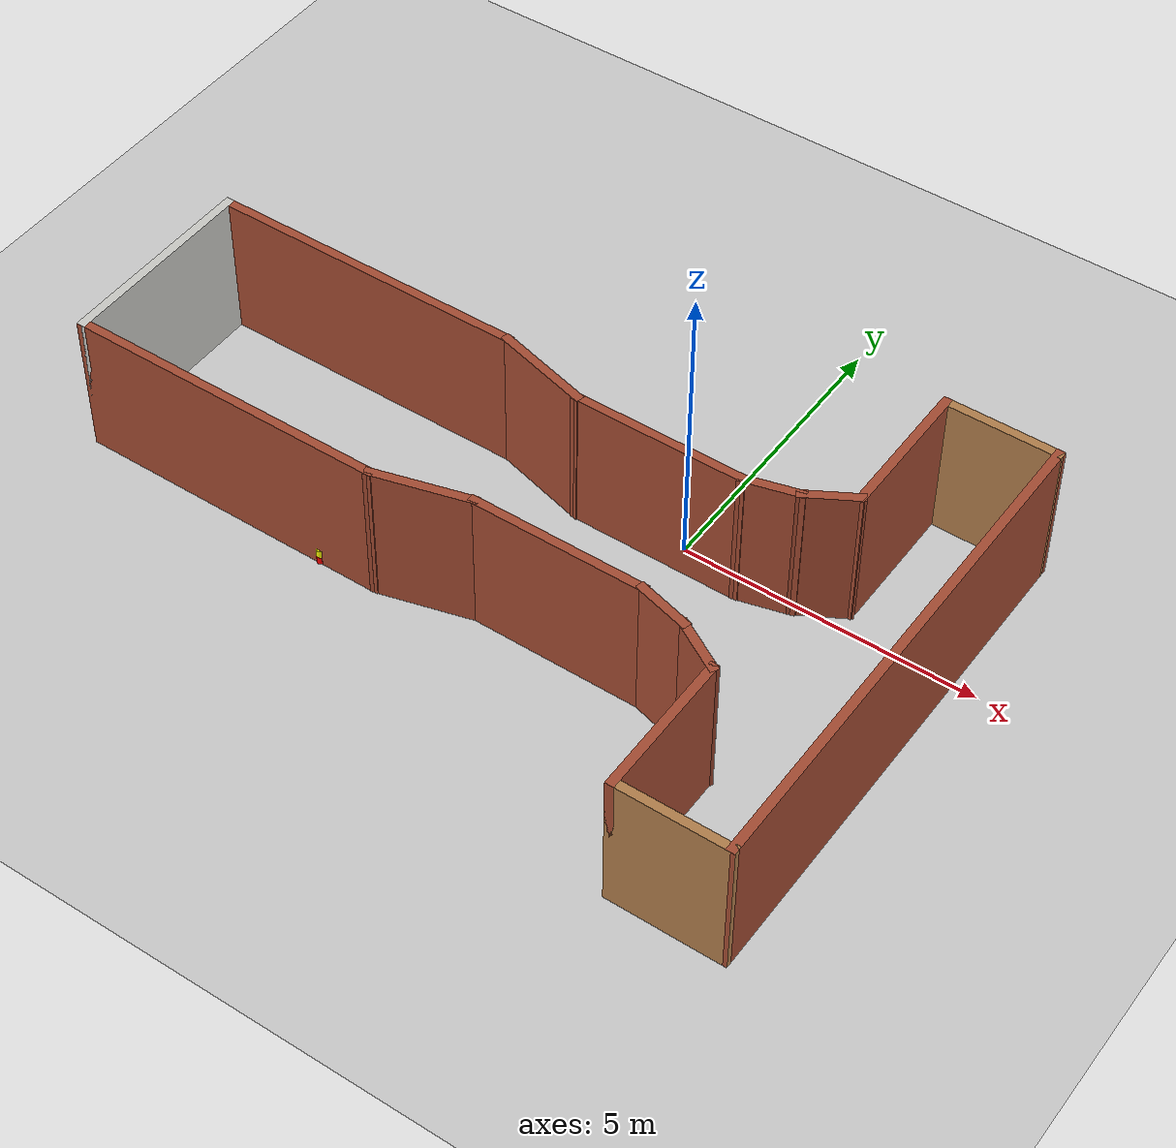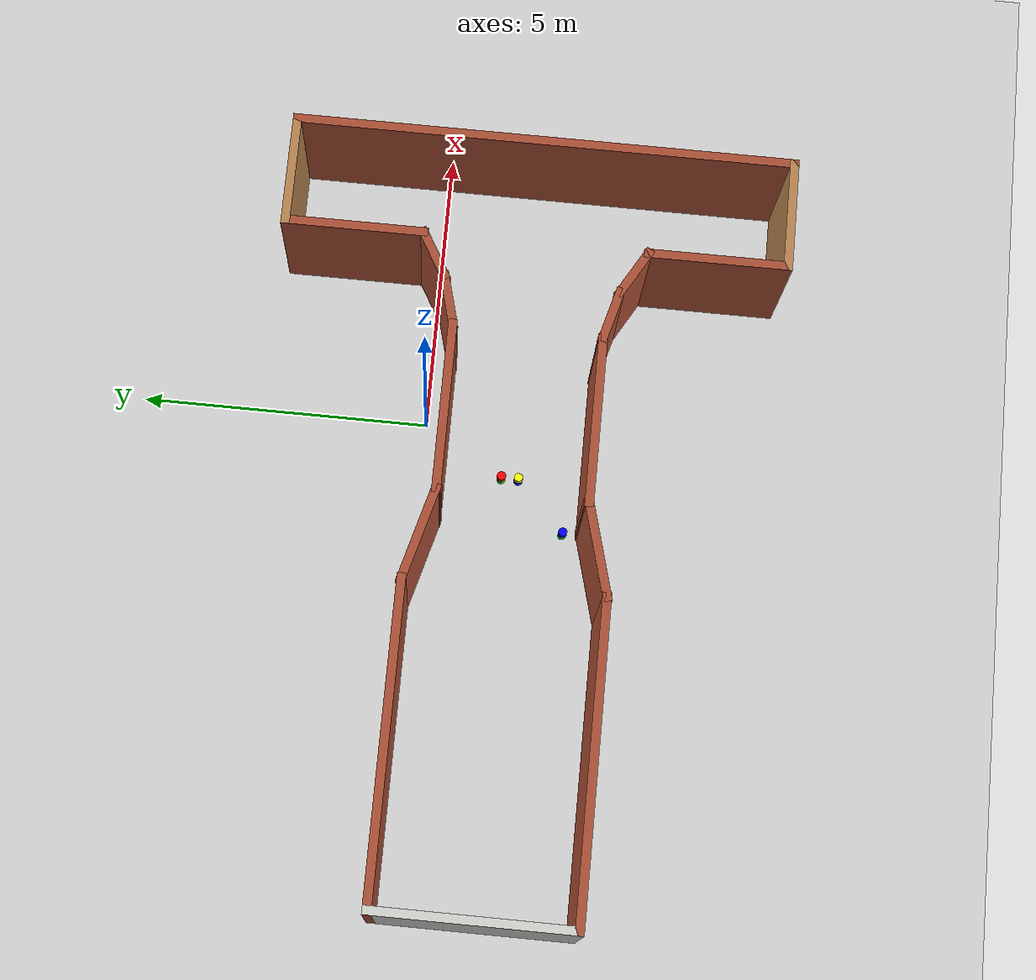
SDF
<sdf version="1.4">
  <world name="default">

    <scene>
      <ambient>0.4 0.4 0.4 1</ambient>
      <background>0.7 0.7 0.7 1</background>
      <shadows>true</shadows>
    </scene>

    <!-- A global light source -->
    <include>
      <uri>model://sun</uri>
    </include>

    <!-- A ground plane -->
    <include>
      <uri>model://ground_plane</uri>
    </include>

    <!-- My Maze -->
    <include>
      <uri>model://maze_3</uri>
	    <pose>-2.05 -1.60 0 0 0 0</pose>
    </include>

    <!-- My Beacons -->
    <include>
      <uri>model://beacon_GB</uri>
	    <pose>-1.75 -2.55 0 0 0 0</pose>
    </include>
    <include>
      <uri>model://beacon_GR</uri>
	    <pose>-0.85 -1.4 0 0 0 0</pose>
    </include>
    <include>
      <uri>model://beacon_BY</uri>
	    <pose>-0.85 -1.7 0 0 0 0</pose>
    </include>
    <include>
      <uri>model://beacon_RY</uri>
	    <pose>-4.3 -3.3 0 0 0 0</pose>
    </include>

    <physics type="ode">
      <real_time_update_rate>1000.0</real_time_update_rate>
      <max_step_size>0.001</max_step_size>
      <real_time_factor>1</real_time_factor>
      <ode>
        <solver>
          <type>quick</type>
          <iters>150</iters>
          <precon_iters>0</precon_iters>
          <sor>1.400000</sor>
          <use_dynamic_moi_rescaling>1</use_dynamic_moi_rescaling>
        </solver>
        <constraints>
          <cfm>0.00001</cfm>
          <erp>0.2</erp>
          <contact_max_correcting_vel>2000.000000</contact_max_correcting_vel>
          <contact_surface_layer>0.01000</contact_surface_layer>
        </constraints>
      </ode>
    </physics>
  </world>

</sdf>

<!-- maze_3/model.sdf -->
<sdf version='1.5'>
  <model name='maze_3'>
    <pose frame=''>3.84212 -3.565 0 0 -0 0</pose>
    <link name='Wall_0'>
      <collision name='Wall_0_Collision'>
        <geometry>
          <box>
            <size>3.5 0.15 2.5</size>
          </box>
        </geometry>
        <pose frame=''>0 0 1.25 0 -0 0</pose>
      </collision>
      <visual name='Wall_0_Visual'>
        <pose frame=''>0 0 1.25 0 -0 0</pose>
        <geometry>
          <box>
            <size>3.5 0.15 2.5</size>
          </box>
        </geometry>
        <material>
          <script>
            <uri>file://media/materials/scripts/gazebo.material</uri>
            <name>Gazebo/CeilingTiled</name>
          </script>
          <ambient>1 1 1 1</ambient>
        </material>
      </visual>
      <pose frame=''>-6.58212 0 0 0 0 -1.5708</pose>
    </link>
    <link name='Wall_1'>
      <collision name='Wall_1_Collision'>
        <geometry>
          <box>
            <size>5.5 0.15 2.5</size>
          </box>
        </geometry>
        <pose frame=''>0 0 1.25 0 -0 0</pose>
      </collision>
      <visual name='Wall_1_Visual'>
        <pose frame=''>0 0 1.25 0 -0 0</pose>
        <geometry>
          <box>
            <size>5.5 0.15 2.5</size>
          </box>
        </geometry>
        <material>
          <script>
            <uri>file://media/materials/scripts/gazebo.material</uri>
            <name>Gazebo/Bricks</name>
          </script>
          <ambient>1 1 1 1</ambient>
        </material>
      </visual>
      <pose frame=''>-3.90712 -1.675 0 0 -0 0</pose>
    </link>
    <link name='Wall_11'>
      <collision name='Wall_11_Collision'>
        <geometry>
          <box>
            <size>1 0.15 2.5</size>
          </box>
        </geometry>
        <pose frame=''>0 0 1.25 0 -0 0</pose>
      </collision>
      <visual name='Wall_11_Visual'>
        <pose frame=''>0 0 1.25 0 -0 0</pose>
        <geometry>
          <box>
            <size>1 0.15 2.5</size>
          </box>
        </geometry>
        <material>
          <script>
            <uri>file://media/materials/scripts/gazebo.material</uri>
            <name>Gazebo/Bricks</name>
          </script>
          <ambient>1 1 1 1</ambient>
        </material>
      </visual>
      <pose frame=''>3.57388 -1.37089 0 0 0 -0.261799</pose>
    </link>
    <link name='Wall_12'>
      <collision name='Wall_12_Collision'>
        <geometry>
          <box>
            <size>1 0.15 2.5</size>
          </box>
        </geometry>
        <pose frame=''>0 0 1.25 0 -0 0</pose>
      </collision>
      <visual name='Wall_12_Visual'>
        <pose frame=''>0 0 1.25 0 -0 0</pose>
        <geometry>
          <box>
            <size>1 0.15 2.5</size>
          </box>
        </geometry>
        <material>
          <script>
            <uri>file://media/materials/scripts/gazebo.material</uri>
            <name>Gazebo/Bricks</name>
          </script>
          <ambient>1 1 1 1</ambient>
        </material>
      </visual>
      <pose frame=''>4.35246 -1.69339 0 0 0 -0.523599</pose>
    </link>
    <link name='Wall_13'>
      <collision name='Wall_13_Collision'>
        <geometry>
          <box>
            <size>2.5 0.15 2.5</size>
          </box>
        </geometry>
        <pose frame=''>0 0 1.25 0 -0 0</pose>
      </collision>
      <visual name='Wall_13_Visual'>
        <pose frame=''>0 0 1.25 0 -0 0</pose>
        <geometry>
          <box>
            <size>2.5 0.15 2.5</size>
          </box>
        </geometry>
        <material>
          <script>
            <uri>file://media/materials/scripts/gazebo.material</uri>
            <name>Gazebo/Bricks</name>
          </script>
          <ambient>1 1 1 1</ambient>
        </material>
      </visual>
      <pose frame=''>4.72052 -3.08089 0 0 0 -1.5708</pose>
    </link>
    <link name='Wall_14'>
      <collision name='Wall_14_Collision'>
        <geometry>
          <box>
            <size>2 0.15 2.5</size>
          </box>
        </geometry>
        <pose frame=''>0 0 1.25 0 -0 0</pose>
      </collision>
      <visual name='Wall_14_Visual'>
        <pose frame=''>0 0 1.25 0 -0 0</pose>
        <geometry>
          <box>
            <size>2 0.15 2.5</size>
          </box>
        </geometry>
        <material>
          <script>
            <uri>file://media/materials/scripts/gazebo.material</uri>
            <name>Gazebo/Wood</name>
          </script>
          <ambient>1 1 1 1</ambient>
        </material>
      </visual>
      <pose frame=''>5.64552 -4.25589 0 0 -0 0</pose>
    </link>
    <link name='Wall_17'>
      <collision name='Wall_17_Collision'>
        <geometry>
          <box>
            <size>1.02224 0.15 2.5</size>
          </box>
        </geometry>
        <pose frame=''>0 0 1.25 0 -0 0</pose>
      </collision>
      <visual name='Wall_17_Visual'>
        <pose frame=''>0 0 1.25 0 -0 0</pose>
        <geometry>
          <box>
            <size>1.02224 0.15 2.5</size>
          </box>
        </geometry>
        <material>
          <script>
            <uri>file://media/materials/scripts/gazebo.material</uri>
            <name>Gazebo/Bricks</name>
          </script>
          <ambient>1 1 1 1</ambient>
        </material>
      </visual>
      <pose frame=''>3.58538 1.37089 0 0 -0 0.254975</pose>
    </link>
    <link name='Wall_18'>
      <collision name='Wall_18_Collision'>
        <geometry>
          <box>
            <size>1 0.15 2.5</size>
          </box>
        </geometry>
        <pose frame=''>0 0 1.25 0 -0 0</pose>
      </collision>
      <visual name='Wall_18_Visual'>
        <pose frame=''>0 0 1.25 0 -0 0</pose>
        <geometry>
          <box>
            <size>1 0.15 2.5</size>
          </box>
        </geometry>
        <material>
          <script>
            <uri>file://media/materials/scripts/gazebo.material</uri>
            <name>Gazebo/Bricks</name>
          </script>
          <ambient>1 1 1 1</ambient>
        </material>
      </visual>
      <pose frame=''>4.36396 1.69339 0 0 -0 0.523599</pose>
    </link>
    <link name='Wall_19'>
      <collision name='Wall_19_Collision'>
        <geometry>
          <box>
            <size>2.5 0.15 2.5</size>
          </box>
        </geometry>
        <pose frame=''>0 0 1.25 0 -0 0</pose>
      </collision>
      <visual name='Wall_19_Visual'>
        <pose frame=''>0 0 1.25 0 -0 0</pose>
        <geometry>
          <box>
            <size>2.5 0.15 2.5</size>
          </box>
        </geometry>
        <material>
          <script>
            <uri>file://media/materials/scripts/gazebo.material</uri>
            <name>Gazebo/Bricks</name>
          </script>
          <ambient>1 1 1 1</ambient>
        </material>
      </visual>
      <pose frame=''>4.73202 3.08089 0 0 -0 1.5708</pose>
    </link>
    <link name='Wall_2'>
      <collision name='Wall_2_Collision'>
        <geometry>
          <box>
            <size>1.75 0.15 2.5</size>
          </box>
        </geometry>
        <pose frame=''>0 0 1.25 0 -0 0</pose>
      </collision>
      <visual name='Wall_2_Visual'>
        <pose frame=''>0 0 1.25 0 -0 0</pose>
        <geometry>
          <box>
            <size>1.75 0.15 2.5</size>
          </box>
        </geometry>
        <material>
          <script>
            <uri>file://media/materials/scripts/gazebo.material</uri>
            <name>Gazebo/Bricks</name>
          </script>
          <ambient>1 1 1 1</ambient>
        </material>
      </visual>
      <pose frame=''>-0.45938 -1.46795 0 0 -0 0.261799</pose>
    </link>
    <link name='Wall_20'>
      <collision name='Wall_20_Collision'>
        <geometry>
          <box>
            <size>2 0.15 2.5</size>
          </box>
        </geometry>
        <pose frame=''>0 0 1.25 0 -0 0</pose>
      </collision>
      <visual name='Wall_20_Visual'>
        <pose frame=''>0 0 1.25 0 -0 0</pose>
        <geometry>
          <box>
            <size>2 0.15 2.5</size>
          </box>
        </geometry>
        <material>
          <script>
            <uri>file://media/materials/scripts/gazebo.material</uri>
            <name>Gazebo/Wood</name>
          </script>
          <ambient>1 1 1 1</ambient>
        </material>
      </visual>
      <pose frame=''>5.65702 4.25589 0 0 -0 0</pose>
    </link>
    <link name='Wall_29'>
      <collision name='Wall_29_Collision'>
        <geometry>
          <box>
            <size>8.66178 0.15 2.5</size>
          </box>
        </geometry>
        <pose frame=''>0 0 1.25 0 -0 0</pose>
      </collision>
      <visual name='Wall_29_Visual'>
        <pose frame=''>0 0 1.25 0 -0 0</pose>
        <geometry>
          <box>
            <size>8.66178 0.15 2.5</size>
          </box>
        </geometry>
        <material>
          <script>
            <uri>file://media/materials/scripts/gazebo.material</uri>
            <name>Gazebo/Bricks</name>
          </script>
          <ambient>1 1 1 1</ambient>
        </material>
      </visual>
      <pose frame=''>6.57627 0 0 0 -0 1.56944</pose>
    </link>
    <link name='Wall_4'>
      <collision name='Wall_4_Collision'>
        <geometry>
          <box>
            <size>5.5 0.15 2.5</size>
          </box>
        </geometry>
        <pose frame=''>0 0 1.25 0 -0 0</pose>
      </collision>
      <visual name='Wall_4_Visual'>
        <pose frame=''>0 0 1.25 0 -0 0</pose>
        <geometry>
          <box>
            <size>5.5 0.15 2.5</size>
          </box>
        </geometry>
        <material>
          <script>
            <uri>file://media/materials/scripts/gazebo.material</uri>
            <name>Gazebo/Bricks</name>
          </script>
          <ambient>1 1 1 1</ambient>
        </material>
      </visual>
      <pose frame=''>-3.90712 1.675 0 0 -0 0</pose>
    </link>
    <link name='Wall_5'>
      <collision name='Wall_5_Collision'>
        <geometry>
          <box>
            <size>1.75 0.15 2.5</size>
          </box>
        </geometry>
        <pose frame=''>0 0 1.25 0 -0 0</pose>
      </collision>
      <visual name='Wall_5_Visual'>
        <pose frame=''>0 0 1.25 0 -0 0</pose>
        <geometry>
          <box>
            <size>1.75 0.15 2.5</size>
          </box>
        </geometry>
        <material>
          <script>
            <uri>file://media/materials/scripts/gazebo.material</uri>
            <name>Gazebo/Bricks</name>
          </script>
          <ambient>1 1 1 1</ambient>
        </material>
      </visual>
      <pose frame=''>-0.45938 1.46795 0 0 0 -0.261799</pose>
    </link>
    <link name='Wall_6'>
      <collision name='Wall_6_Collision'>
        <geometry>
          <box>
            <size>3 0.15 2.5</size>
          </box>
        </geometry>
        <pose frame=''>0 0 1.25 0 -0 0</pose>
      </collision>
      <visual name='Wall_6_Visual'>
        <pose frame=''>0 0 1.25 0 -0 0</pose>
        <geometry>
          <box>
            <size>3 0.15 2.5</size>
          </box>
        </geometry>
        <material>
          <script>
            <uri>file://media/materials/scripts/gazebo.material</uri>
            <name>Gazebo/Bricks</name>
          </script>
          <ambient>1 1 1 1</ambient>
        </material>
      </visual>
      <pose frame=''>1.73836 1.26089 0 0 -0 0</pose>
    </link>
    <link name='Wall_8'>
      <collision name='Wall_8_Collision'>
        <geometry>
          <box>
            <size>3 0.15 2.5</size>
          </box>
        </geometry>
        <pose frame=''>0 0 1.25 0 -0 0</pose>
      </collision>
      <visual name='Wall_8_Visual'>
        <pose frame=''>0 0 1.25 0 -0 0</pose>
        <geometry>
          <box>
            <size>3 0.15 2.5</size>
          </box>
        </geometry>
        <material>
          <script>
            <uri>file://media/materials/scripts/gazebo.material</uri>
            <name>Gazebo/Bricks</name>
          </script>
          <ambient>1 1 1 1</ambient>
        </material>
      </visual>
      <pose frame=''>1.73836 -1.26089 0 0 -0 0</pose>
    </link>
    <static>1</static>
  </model>
</sdf>

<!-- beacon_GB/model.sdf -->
<sdf version='1.4'>
  <model name="beacon_GB">
	<static>true</static>
          <link name='chassis_lower'>
            <pose>0 0 0.07 0 0 0</pose>

            <collision name='collision'>
              <geometry>
                <cylinder>
                  <radius>.075</radius>
		  <length>.140</length>
                </cylinder>
              </geometry>
            </collision>

            <visual name='visual'>
              <geometry>
                <cylinder>
                  <radius>.075</radius>
		  <length>.140</length>
                </cylinder>
              </geometry>
        	<material>
          	  <ambient>0 1 0 1</ambient>
          	  <diffuse>0 1 0 1</diffuse>
          	  <specular>0.1 0.1 0.1 1</specular>
         	  <emissive>0 0 0 0</emissive>
        	</material>
            </visual>
          </link>

          <link name='chassis_upper'>
            <pose>0 0 0.21 0 0 0</pose>

            <collision name='collision'>
              <geometry>
                <cylinder>
                  <radius>.075</radius>
		  <length>.140</length>
                </cylinder>
              </geometry>
            </collision>

            <visual name='visual'>
              <geometry>
                <cylinder>
                  <radius>.075</radius>
		  <length>.140</length>
                </cylinder>
              </geometry>
        	<material>
          	  <ambient>0 0 1 1</ambient>
          	  <diffuse>0 0 1 1</diffuse>
          	  <specular>0.1 0.1 0.1 1</specular>
         	  <emissive>0 0 0 0</emissive>
        	</material>
            </visual>
          </link>

  </model>
</sdf>

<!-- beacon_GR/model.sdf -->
<sdf version='1.4'>
  <model name="beacon_GR">
	<static>true</static>
          <link name='chassis_lower'>
            <pose>0 0 0.07 0 0 0</pose>

            <collision name='collision'>
              <geometry>
                <cylinder>
                  <radius>.075</radius>
		  <length>.140</length>
                </cylinder>
              </geometry>
            </collision>

            <visual name='visual'>
              <geometry>
                <cylinder>
                  <radius>.075</radius>
		  <length>.140</length>
                </cylinder>
              </geometry>
        	<material>
          	  <ambient>0 1 0 1</ambient>
          	  <diffuse>0 1 0 1</diffuse>
          	  <specular>0.1 0.1 0.1 1</specular>
         	  <emissive>0 0 0 0</emissive>
        	</material>
            </visual>
          </link>

          <link name='chassis_upper'>
            <pose>0 0 0.21 0 0 0</pose>

            <collision name='collision'>
              <geometry>
                <cylinder>
                  <radius>.075</radius>
		  <length>.140</length>
                </cylinder>
              </geometry>
            </collision>

            <visual name='visual'>
              <geometry>
                <cylinder>
                  <radius>.075</radius>
		  <length>.140</length>
                </cylinder>
              </geometry>
        	<material>
          	  <ambient>1 0 0 1</ambient>
          	  <diffuse>1 0 0 1</diffuse>
          	  <specular>0.1 0.1 0.1 1</specular>
         	  <emissive>0 0 0 0</emissive>
        	</material>
            </visual>
          </link>

  </model>
</sdf>

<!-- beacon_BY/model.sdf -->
<sdf version='1.4'>
  <model name="beacon_BY">
	<static>true</static>
          <link name='chassis_lower'>
            <pose>0 0 0.07 0 0 0</pose>

            <collision name='collision'>
              <geometry>
                <cylinder>
                  <radius>.075</radius>
		  <length>.140</length>
                </cylinder>
              </geometry>
            </collision>

            <visual name='visual'>
              <geometry>
                <cylinder>
                  <radius>.075</radius>
		  <length>.140</length>
                </cylinder>
              </geometry>
        	<material>
          	  <ambient>0 0 1 1</ambient>
          	  <diffuse>0 0 1 1</diffuse>
          	  <specular>0.1 0.1 0.1 1</specular>
         	  <emissive>0 0 0 0</emissive>
        	</material>
            </visual>
          </link>

          <link name='chassis_upper'>
            <pose>0 0 0.21 0 0 0</pose>

            <collision name='collision'>
              <geometry>
                <cylinder>
                  <radius>.075</radius>
		  <length>.140</length>
                </cylinder>
              </geometry>
            </collision>

            <visual name='visual'>
              <geometry>
                <cylinder>
                  <radius>.075</radius>
		  <length>.140</length>
                </cylinder>
              </geometry>
        	<material>
          	  <ambient>1 1 0 1</ambient>
          	  <diffuse>1 1 0 1</diffuse>
          	  <specular>0.1 0.1 0.1 1</specular>
         	  <emissive>0 0 0 0</emissive>
        	</material>
            </visual>
          </link>

  </model>
</sdf>

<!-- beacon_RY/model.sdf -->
<sdf version='1.4'>
  <model name="beacon_RY">
	<static>true</static>
          <link name='chassis_lower'>
            <pose>0 0 0.07 0 0 0</pose>

            <collision name='collision'>
              <geometry>
                <cylinder>
                  <radius>.075</radius>
		  <length>.140</length>
                </cylinder>
              </geometry>
            </collision>

            <visual name='visual'>
              <geometry>
                <cylinder>
                  <radius>.075</radius>
		  <length>.140</length>
                </cylinder>
              </geometry>
        	<material>
          	  <ambient>1 0 0 1</ambient>
          	  <diffuse>1 0 0 1</diffuse>
          	  <specular>0.1 0.1 0.1 1</specular>
         	  <emissive>0 0 0 0</emissive>
        	</material>
            </visual>
          </link>

          <link name='chassis_upper'>
            <pose>0 0 0.21 0 0 0</pose>

            <collision name='collision'>
              <geometry>
                <cylinder>
                  <radius>.075</radius>
		  <length>.140</length>
                </cylinder>
              </geometry>
            </collision>

            <visual name='visual'>
              <geometry>
                <cylinder>
                  <radius>.075</radius>
		  <length>.140</length>
                </cylinder>
              </geometry>
        	<material>
          	  <ambient>1 1 0 1</ambient>
          	  <diffuse>1 1 0 1</diffuse>
          	  <specular>0.1 0.1 0.1 1</specular>
         	  <emissive>0 0 0 0</emissive>
        	</material>
            </visual>
          </link>

  </model>
</sdf>
